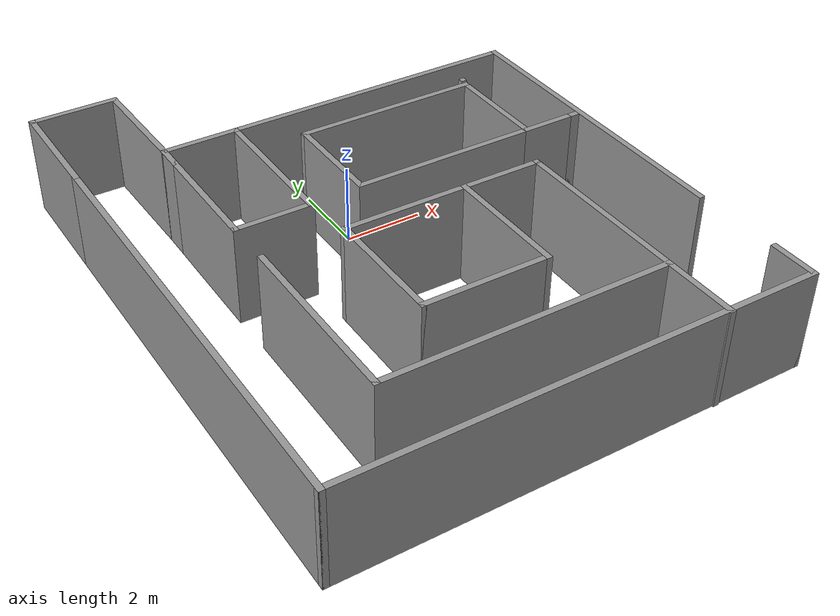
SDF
<?xml version='1.0'?>
<sdf version='1.7'>
  <model name='maze'>
    <pose>0.025275 -1.99562 0 0 -0 0</pose>
    <link name='Wall_0'>
      <collision name='Wall_0_Collision'>
        <geometry>
          <box>
            <size>11.5 0.15 2.5</size>
          </box>
        </geometry>
        <pose>0 0 1.25 0 -0 0</pose>
      </collision>
      <visual name='Wall_0_Visual'>
        <pose>0 0 1.25 0 -0 0</pose>
        <geometry>
          <box>
            <size>11.5 0.15 2.5</size>
          </box>
        </geometry>
        <material>
          <script>
            <uri>file://media/materials/scripts/gazebo.material</uri>
            <name>Gazebo/Grey</name>
          </script>
          <ambient>1 1 1 1</ambient>
        </material>
        <meta>
          <layer>0</layer>
        </meta>
      </visual>
      <pose>-5.8 -1.409 0 0 -0 1.5708</pose>
    </link>
    <link name='Wall_11'>
      <collision name='Wall_11_Collision'>
        <geometry>
          <box>
            <size>0.75 0.15 2.5</size>
          </box>
        </geometry>
        <pose>0 0 1.25 0 -0 0</pose>
      </collision>
      <visual name='Wall_11_Visual'>
        <pose>0 0 1.25 0 -0 0</pose>
        <geometry>
          <box>
            <size>0.75 0.15 2.5</size>
          </box>
        </geometry>
        <material>
          <script>
            <uri>file://media/materials/scripts/gazebo.material</uri>
            <name>Gazebo/Grey</name>
          </script>
          <ambient>1 1 1 1</ambient>
        </material>
        <meta>
          <layer>0</layer>
        </meta>
      </visual>
      <pose>-3.6427 3.9289 0 0 -0 -1.5708</pose>
    </link>
    <link name='Wall_13'>
      <collision name='Wall_13_Collision'>
        <geometry>
          <box>
            <size>3.25 0.15 2.5</size>
          </box>
        </geometry>
        <pose>0 0 1.25 0 -0 0</pose>
      </collision>
      <visual name='Wall_13_Visual'>
        <pose>0 0 1.25 0 -0 0</pose>
        <geometry>
          <box>
            <size>3.25 0.15 2.5</size>
          </box>
        </geometry>
        <material>
          <script>
            <uri>file://media/materials/scripts/gazebo.material</uri>
            <name>Gazebo/Grey</name>
          </script>
          <ambient>1 1 1 1</ambient>
        </material>
        <meta>
          <layer>0</layer>
        </meta>
      </visual>
      <pose>-3.6427 2.0789 0 0 -0 -1.5708</pose>
    </link>
    <link name='Wall_14'>
      <collision name='Wall_14_Collision'>
        <geometry>
          <box>
            <size>2 0.15 2.5</size>
          </box>
        </geometry>
        <pose>0 0 1.25 0 -0 0</pose>
      </collision>
      <visual name='Wall_14_Visual'>
        <pose>0 0 1.25 0 -0 0</pose>
        <geometry>
          <box>
            <size>2 0.15 2.5</size>
          </box>
        </geometry>
        <material>
          <script>
            <uri>file://media/materials/scripts/gazebo.material</uri>
            <name>Gazebo/Grey</name>
          </script>
          <ambient>1 1 1 1</ambient>
        </material>
        <meta>
          <layer>0</layer>
        </meta>
      </visual>
      <pose>-2.7177 0.528897 0 0 -0 0</pose>
    </link>
    <link name='Wall_15'>
      <collision name='Wall_15_Collision'>
        <geometry>
          <box>
            <size>3.75 0.15 2.5</size>
          </box>
        </geometry>
        <pose>0 0 1.25 0 -0 0</pose>
      </collision>
      <visual name='Wall_15_Visual'>
        <pose>0 0 1.25 0 -0 0</pose>
        <geometry>
          <box>
            <size>3.75 0.15 2.5</size>
          </box>
        </geometry>
        <material>
          <script>
            <uri>file://media/materials/scripts/gazebo.material</uri>
            <name>Gazebo/Grey</name>
          </script>
          <ambient>1 1 1 1</ambient>
        </material>
        <meta>
          <layer>0</layer>
        </meta>
      </visual>
      <pose>-1.7927 2.3289 0 0 -0 1.5708</pose>
    </link>
    <link name='Wall_17'>
      <collision name='Wall_17_Collision'>
        <geometry>
          <box>
            <size>0.15 0.15 2.5</size>
          </box>
        </geometry>
        <pose>0 0 1.25 0 -0 0</pose>
      </collision>
      <visual name='Wall_17_Visual'>
        <pose>0 0 1.25 0 -0 0</pose>
        <geometry>
          <box>
            <size>0.15 0.15 2.5</size>
          </box>
        </geometry>
        <material>
          <script>
            <uri>file://media/materials/scripts/gazebo.material</uri>
            <name>Gazebo/Grey</name>
          </script>
          <ambient>1 1 1 1</ambient>
        </material>
        <meta>
          <layer>0</layer>
        </meta>
      </visual>
      <pose>-1.7927 4.2102 0 0 -0 0</pose>
    </link>
    <link name='Wall_19'>
      <collision name='Wall_19_Collision'>
        <geometry>
          <box>
            <size>4.75 0.15 2.5</size>
          </box>
        </geometry>
        <pose>0 0 1.25 0 -0 0</pose>
      </collision>
      <visual name='Wall_19_Visual'>
        <pose>0 0 1.25 0 -0 0</pose>
        <geometry>
          <box>
            <size>4.75 0.15 2.5</size>
          </box>
        </geometry>
        <material>
          <script>
            <uri>file://media/materials/scripts/gazebo.material</uri>
            <name>Gazebo/Grey</name>
          </script>
          <ambient>1 1 1 1</ambient>
        </material>
        <meta>
          <layer>0</layer>
        </meta>
      </visual>
      <pose>-3.6064 -2.96747 0 0 -0 -1.5708</pose>
    </link>
    <link name='Wall_20'>
      <collision name='Wall_20_Collision'>
        <geometry>
          <box>
            <size>7.25 0.15 2.5</size>
          </box>
        </geometry>
        <pose>0 0 1.25 0 -0 0</pose>
      </collision>
      <visual name='Wall_20_Visual'>
        <pose>0 0 1.25 0 -0 0</pose>
        <geometry>
          <box>
            <size>7.25 0.15 2.5</size>
          </box>
        </geometry>
        <material>
          <script>
            <uri>file://media/materials/scripts/gazebo.material</uri>
            <name>Gazebo/Grey</name>
          </script>
          <ambient>1 1 1 1</ambient>
        </material>
        <meta>
          <layer>0</layer>
        </meta>
      </visual>
      <pose>-0.056404 -5.26747 0 0 -0 0</pose>
    </link>
    <link name='Wall_21'>
      <collision name='Wall_21_Collision'>
        <geometry>
          <box>
            <size>4.75 0.15 2.5</size>
          </box>
        </geometry>
        <pose>0 0 1.25 0 -0 0</pose>
      </collision>
      <visual name='Wall_21_Visual'>
        <pose>0 0 1.25 0 -0 0</pose>
        <geometry>
          <box>
            <size>4.75 0.15 2.5</size>
          </box>
        </geometry>
        <material>
          <script>
            <uri>file://media/materials/scripts/gazebo.material</uri>
            <name>Gazebo/Grey</name>
          </script>
          <ambient>1 1 1 1</ambient>
        </material>
        <meta>
          <layer>0</layer>
        </meta>
      </visual>
      <pose>3.4936 -2.96747 0 0 -0 1.5708</pose>
    </link>
    <link name='Wall_22'>
      <collision name='Wall_22_Collision'>
        <geometry>
          <box>
            <size>5.25 0.15 2.5</size>
          </box>
        </geometry>
        <pose>0 0 1.25 0 -0 0</pose>
      </collision>
      <visual name='Wall_22_Visual'>
        <pose>0 0 1.25 0 -0 0</pose>
        <geometry>
          <box>
            <size>5.25 0.15 2.5</size>
          </box>
        </geometry>
        <material>
          <script>
            <uri>file://media/materials/scripts/gazebo.material</uri>
            <name>Gazebo/Grey</name>
          </script>
          <ambient>1 1 1 1</ambient>
        </material>
        <meta>
          <layer>0</layer>
        </meta>
      </visual>
      <pose>0.943596 -0.667474 0 0 -0 3.14159</pose>
    </link>
    <link name='Wall_23'>
      <collision name='Wall_23_Collision'>
        <geometry>
          <box>
            <size>3.25 0.15 2.5</size>
          </box>
        </geometry>
        <pose>0 0 1.25 0 -0 0</pose>
      </collision>
      <visual name='Wall_23_Visual'>
        <pose>0 0 1.25 0 -0 0</pose>
        <geometry>
          <box>
            <size>3.25 0.15 2.5</size>
          </box>
        </geometry>
        <material>
          <script>
            <uri>file://media/materials/scripts/gazebo.material</uri>
            <name>Gazebo/Grey</name>
          </script>
          <ambient>1 1 1 1</ambient>
        </material>
        <meta>
          <layer>0</layer>
        </meta>
      </visual>
      <pose>-1.6064 -2.21747 0 0 -0 -1.5708</pose>
    </link>
    <link name='Wall_24'>
      <collision name='Wall_24_Collision'>
        <geometry>
          <box>
            <size>3.25 0.15 2.5</size>
          </box>
        </geometry>
        <pose>0 0 1.25 0 -0 0</pose>
      </collision>
      <visual name='Wall_24_Visual'>
        <pose>0 0 1.25 0 -0 0</pose>
        <geometry>
          <box>
            <size>3.25 0.15 2.5</size>
          </box>
        </geometry>
        <material>
          <script>
            <uri>file://media/materials/scripts/gazebo.material</uri>
            <name>Gazebo/Grey</name>
          </script>
          <ambient>1 1 1 1</ambient>
        </material>
        <meta>
          <layer>0</layer>
        </meta>
      </visual>
      <pose>-0.056404 -3.76747 0 0 -0 0</pose>
    </link>
    <link name='Wall_25'>
      <collision name='Wall_25_Collision'>
        <geometry>
          <box>
            <size>3.25 0.15 2.5</size>
          </box>
        </geometry>
        <pose>0 0 1.25 0 -0 0</pose>
      </collision>
      <visual name='Wall_25_Visual'>
        <pose>0 0 1.25 0 -0 0</pose>
        <geometry>
          <box>
            <size>3.25 0.15 2.5</size>
          </box>
        </geometry>
        <material>
          <script>
            <uri>file://media/materials/scripts/gazebo.material</uri>
            <name>Gazebo/Grey</name>
          </script>
          <ambient>1 1 1 1</ambient>
        </material>
        <meta>
          <layer>0</layer>
        </meta>
      </visual>
      <pose>1.4936 -2.21747 0 0 -0 1.5708</pose>
    </link>
    <link name='Wall_28'>
      <collision name='Wall_28_Collision'>
        <geometry>
          <box>
            <size>0.15 0.15 2.5</size>
          </box>
        </geometry>
        <pose>0 0 1.25 0 -0 0</pose>
      </collision>
      <visual name='Wall_28_Visual'>
        <pose>0 0 1.25 0 -0 0</pose>
        <geometry>
          <box>
            <size>0.15 0.15 2.5</size>
          </box>
        </geometry>
        <material>
          <script>
            <uri>file://media/materials/scripts/gazebo.material</uri>
            <name>Gazebo/Grey</name>
          </script>
          <ambient>1 1 1 1</ambient>
        </material>
        <meta>
          <layer>0</layer>
        </meta>
      </visual>
      <pose>4.19881 3.43157 0 0 -0 0</pose>
    </link>
    <link name='Wall_31'>
      <collision name='Wall_31_Collision'>
        <geometry>
          <box>
            <size>4.75 0.15 2.5</size>
          </box>
        </geometry>
        <pose>0 0 1.25 0 -0 0</pose>
      </collision>
      <visual name='Wall_31_Visual'>
        <pose>0 0 1.25 0 -0 0</pose>
        <geometry>
          <box>
            <size>4.75 0.15 2.5</size>
          </box>
        </geometry>
        <material>
          <script>
            <uri>file://media/materials/scripts/gazebo.material</uri>
            <name>Gazebo/Grey</name>
          </script>
          <ambient>1 1 1 1</ambient>
        </material>
        <meta>
          <layer>0</layer>
        </meta>
      </visual>
      <pose>1.83516 3.20831 0 0 -0 0</pose>
    </link>
    <link name='Wall_32'>
      <collision name='Wall_32_Collision'>
        <geometry>
          <box>
            <size>2.75 0.15 2.5</size>
          </box>
        </geometry>
        <pose>0 0 1.25 0 -0 0</pose>
      </collision>
      <visual name='Wall_32_Visual'>
        <pose>0 0 1.25 0 -0 0</pose>
        <geometry>
          <box>
            <size>2.75 0.15 2.5</size>
          </box>
        </geometry>
        <material>
          <script>
            <uri>file://media/materials/scripts/gazebo.material</uri>
            <name>Gazebo/Grey</name>
          </script>
          <ambient>1 1 1 1</ambient>
        </material>
        <meta>
          <layer>0</layer>
        </meta>
      </visual>
      <pose>4.13516 1.90831 0 0 -0 -1.5708</pose>
    </link>
    <link name='Wall_33'>
      <collision name='Wall_33_Collision'>
        <geometry>
          <box>
            <size>1.5 0.15 2.5</size>
          </box>
        </geometry>
        <pose>0 0 1.25 0 -0 0</pose>
      </collision>
      <visual name='Wall_33_Visual'>
        <pose>0 0 1.25 0 -0 0</pose>
        <geometry>
          <box>
            <size>1.5 0.15 2.5</size>
          </box>
        </geometry>
        <material>
          <script>
            <uri>file://media/materials/scripts/gazebo.material</uri>
            <name>Gazebo/Grey</name>
          </script>
          <ambient>1 1 1 1</ambient>
        </material>
        <meta>
          <layer>0</layer>
        </meta>
      </visual>
      <pose>4.81016 0.608307 0 0 -0 0</pose>
    </link>
    <link name='Wall_34'>
      <collision name='Wall_34_Collision'>
        <geometry>
          <box>
            <size>0.25 0.15 2.5</size>
          </box>
        </geometry>
        <pose>0 0 1.25 0 -0 0</pose>
      </collision>
      <visual name='Wall_34_Visual'>
        <pose>0 0 1.25 0 -0 0</pose>
        <geometry>
          <box>
            <size>0.25 0.15 2.5</size>
          </box>
        </geometry>
        <material>
          <script>
            <uri>file://media/materials/scripts/gazebo.material</uri>
            <name>Gazebo/Grey</name>
          </script>
          <ambient>1 1 1 1</ambient>
        </material>
        <meta>
          <layer>0</layer>
        </meta>
      </visual>
      <pose>5.53516 0.608307 0 0 -0 0</pose>
    </link>
    <link name='Wall_36'>
      <collision name='Wall_36_Collision'>
        <geometry>
          <box>
            <size>2.75 0.15 2.5</size>
          </box>
        </geometry>
        <pose>0 0 1.25 0 -0 0</pose>
      </collision>
      <visual name='Wall_36_Visual'>
        <pose>0 0 1.25 0 -0 0</pose>
        <geometry>
          <box>
            <size>2.75 0.15 2.5</size>
          </box>
        </geometry>
        <material>
          <script>
            <uri>file://media/materials/scripts/gazebo.material</uri>
            <name>Gazebo/Grey</name>
          </script>
          <ambient>1 1 1 1</ambient>
        </material>
        <meta>
          <layer>0</layer>
        </meta>
      </visual>
      <pose>-0.464836 1.90831 0 0 -0 -1.5708</pose>
    </link>
    <link name='Wall_37'>
      <collision name='Wall_37_Collision'>
        <geometry>
          <box>
            <size>4.75 0.15 2.5</size>
          </box>
        </geometry>
        <pose>0 0 1.25 0 -0 0</pose>
      </collision>
      <visual name='Wall_37_Visual'>
        <pose>0 0 1.25 0 -0 0</pose>
        <geometry>
          <box>
            <size>4.75 0.15 2.5</size>
          </box>
        </geometry>
        <material>
          <script>
            <uri>file://media/materials/scripts/gazebo.material</uri>
            <name>Gazebo/Grey</name>
          </script>
          <ambient>1 1 1 1</ambient>
        </material>
        <meta>
          <layer>0</layer>
        </meta>
      </visual>
      <pose>1.83516 0.608307 0 0 -0 0</pose>
    </link>
    <link name='Wall_39'>
      <collision name='Wall_39_Collision'>
        <geometry>
          <box>
            <size>2 0.15 2.5</size>
          </box>
        </geometry>
        <pose>0 0 1.25 0 -0 0</pose>
      </collision>
      <visual name='Wall_39_Visual'>
        <pose>0 0 1.25 0 -0 0</pose>
        <geometry>
          <box>
            <size>2 0.15 2.5</size>
          </box>
        </geometry>
        <material>
          <script>
            <uri>file://media/materials/scripts/gazebo.material</uri>
            <name>Gazebo/Grey</name>
          </script>
          <ambient>1 1 1 1</ambient>
        </material>
        <meta>
          <layer>0</layer>
        </meta>
      </visual>
      <pose>3.4936 -6.19247 0 0 -0 -1.5708</pose>
    </link>
    <link name='Wall_41'>
      <collision name='Wall_41_Collision'>
        <geometry>
          <box>
            <size>3 0.15 2.5</size>
          </box>
        </geometry>
        <pose>0 0 1.25 0 -0 0</pose>
      </collision>
      <visual name='Wall_41_Visual'>
        <pose>0 0 1.25 0 -0 0</pose>
        <geometry>
          <box>
            <size>3 0.15 2.5</size>
          </box>
        </geometry>
        <material>
          <script>
            <uri>file://media/materials/scripts/gazebo.material</uri>
            <name>Gazebo/Grey</name>
          </script>
          <ambient>1 1 1 1</ambient>
        </material>
        <meta>
          <layer>0</layer>
        </meta>
      </visual>
      <pose>-5.8 5.691 0 0 -0 1.5708</pose>
    </link>
    <link name='Wall_42'>
      <collision name='Wall_42_Collision'>
        <geometry>
          <box>
            <size>2.25 0.15 2.5</size>
          </box>
        </geometry>
        <pose>0 0 1.25 0 -0 0</pose>
      </collision>
      <visual name='Wall_42_Visual'>
        <pose>0 0 1.25 0 -0 0</pose>
        <geometry>
          <box>
            <size>2.25 0.15 2.5</size>
          </box>
        </geometry>
        <material>
          <script>
            <uri>file://media/materials/scripts/gazebo.material</uri>
            <name>Gazebo/Grey</name>
          </script>
          <ambient>1 1 1 1</ambient>
        </material>
        <meta>
          <layer>0</layer>
        </meta>
      </visual>
      <pose>-4.75 7.116 0 0 -0 0</pose>
    </link>
    <link name='Wall_43'>
      <collision name='Wall_43_Collision'>
        <geometry>
          <box>
            <size>3.03767 0.15 2.5</size>
          </box>
        </geometry>
        <pose>0 0 1.25 0 -0 0</pose>
      </collision>
      <visual name='Wall_43_Visual'>
        <pose>0 0 1.25 0 -0 0</pose>
        <geometry>
          <box>
            <size>3.03767 0.15 2.5</size>
          </box>
        </geometry>
        <material>
          <script>
            <uri>file://media/materials/scripts/gazebo.material</uri>
            <name>Gazebo/Grey</name>
          </script>
          <ambient>1 1 1 1</ambient>
        </material>
        <meta>
          <layer>0</layer>
        </meta>
      </visual>
      <pose>-3.67135 5.67245 0 0 -0 -1.55095</pose>
    </link>
    <link name='Wall_5'>
      <collision name='Wall_5_Collision'>
        <geometry>
          <box>
            <size>11.75 0.15 2.5</size>
          </box>
        </geometry>
        <pose>0 0 1.25 0 -0 0</pose>
      </collision>
      <visual name='Wall_5_Visual'>
        <pose>0 0 1.25 0 -0 0</pose>
        <geometry>
          <box>
            <size>11.75 0.15 2.5</size>
          </box>
        </geometry>
        <material>
          <script>
            <uri>file://media/materials/scripts/gazebo.material</uri>
            <name>Gazebo/Grey</name>
          </script>
          <ambient>1 1 1 1</ambient>
        </material>
        <meta>
          <layer>0</layer>
        </meta>
      </visual>
      <pose>0 -7.084 0 0 -0 0</pose>
    </link>
    <link name='Wall_6'>
      <collision name='Wall_6_Collision'>
        <geometry>
          <box>
            <size>1.25 0.15 2.5</size>
          </box>
        </geometry>
        <pose>0 0 1.25 0 -0 0</pose>
      </collision>
      <visual name='Wall_6_Visual'>
        <pose>0 0 1.25 0 -0 0</pose>
        <geometry>
          <box>
            <size>1.25 0.15 2.5</size>
          </box>
        </geometry>
        <material>
          <script>
            <uri>file://media/materials/scripts/gazebo.material</uri>
            <name>Gazebo/Grey</name>
          </script>
          <ambient>1 1 1 1</ambient>
        </material>
        <meta>
          <layer>0</layer>
        </meta>
      </visual>
      <pose>5.8 -6.534 0 0 -0 1.5708</pose>
    </link>
    <link name='Wall_8'>
      <collision name='Wall_8_Collision'>
        <geometry>
          <box>
            <size>8.09111 0.15 2.5</size>
          </box>
        </geometry>
        <pose>0 0 1.25 0 -0 0</pose>
      </collision>
      <visual name='Wall_8_Visual'>
        <pose>0 0 1.25 0 -0 0</pose>
        <geometry>
          <box>
            <size>8.09111 0.15 2.5</size>
          </box>
        </geometry>
        <material>
          <script>
            <uri>file://media/materials/scripts/gazebo.material</uri>
            <name>Gazebo/Grey</name>
          </script>
          <ambient>1 1 1 1</ambient>
        </material>
        <meta>
          <layer>0</layer>
        </meta>
      </visual>
      <pose>5.7339 0.258698 0 0 -0 1.5708</pose>
    </link>
    <link name='Wall_9'>
      <collision name='Wall_9_Collision'>
        <geometry>
          <box>
            <size>9.5 0.15 2.5</size>
          </box>
        </geometry>
        <pose>0 0 1.25 0 -0 0</pose>
      </collision>
      <visual name='Wall_9_Visual'>
        <pose>0 0 1.25 0 -0 0</pose>
        <geometry>
          <box>
            <size>9.5 0.15 2.5</size>
          </box>
        </geometry>
        <material>
          <script>
            <uri>file://media/materials/scripts/gazebo.material</uri>
            <name>Gazebo/Grey</name>
          </script>
          <ambient>1 1 1 1</ambient>
        </material>
        <meta>
          <layer>0</layer>
        </meta>
      </visual>
      <pose>1.0323 4.2289 0 0 -0 3.14159</pose>
    </link>
    <static>1</static>
  </model>
</sdf>
